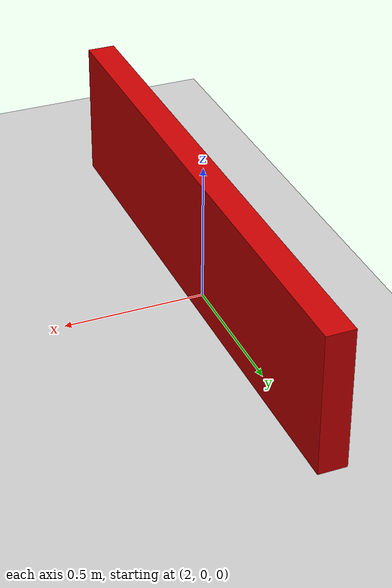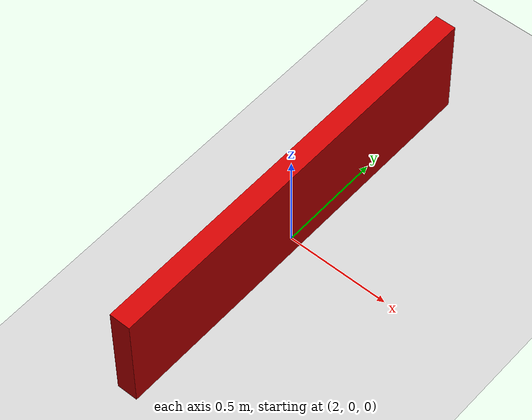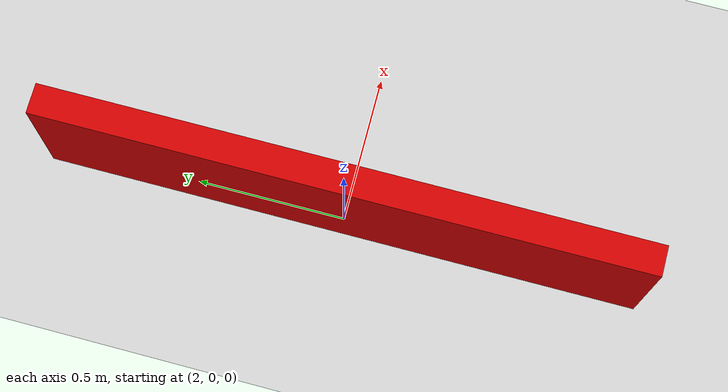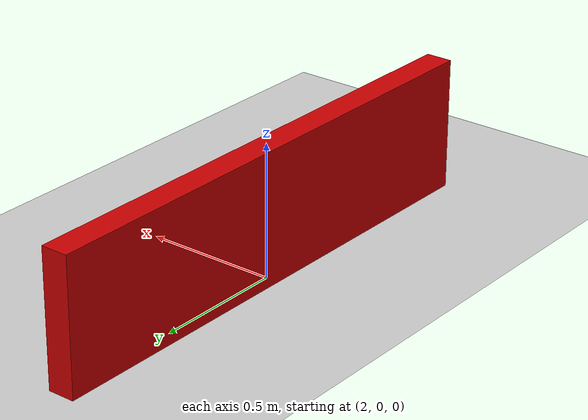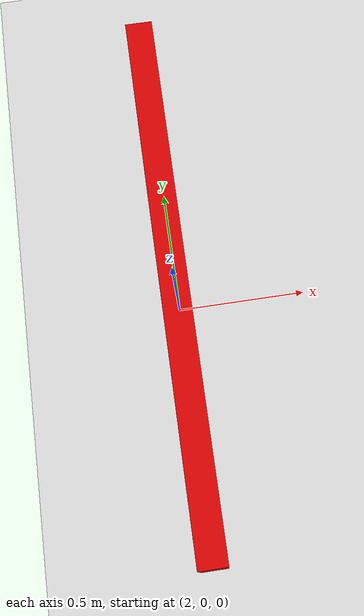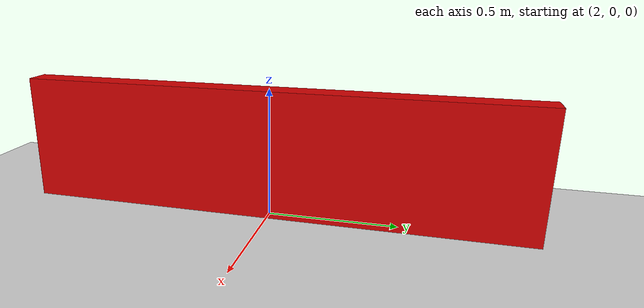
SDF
<?xml version="1.0" ?>
<sdf version="1.8">
  <world name="robot_world">
    <physics name="1ms" type="dart">
      <max_step_size>0.001</max_step_size>
      <real_time_factor>1</real_time_factor>
    </physics>

    <plugin
      filename="gz-sim-physics-system"
      name="gz::sim::systems::Physics">
    </plugin>

    <plugin
      filename="gz-sim-user-commands-system"
      name="gz::sim::systems::UserCommands">
    </plugin>

    <plugin
        filename="gz-sim-sensors-system"
        name="gz::sim::systems::Sensors">
        <render_engine>ogre2</render_engine>
    </plugin>

    <plugin
        filename="gz-sim-joint-state-publisher-system"
        name="gz::sim::systems::JointStatePublisher">
        <update_rate>100</update_rate>
        <joint_name>left_wheel_joint</joint_name>
        <joint_name>right_wheel_joint</joint_name>
        <joint_name>caster_wheel_joint</joint_name>
    </plugin>

    <plugin
        filename="gz-sim-scene-broadcaster-system"
        name="gz::sim::systems::SceneBroadcaster">
    </plugin>

    <light type="directional" name="sun">
      <cast_shadows>true</cast_shadows>
      <pose>0 0 10 0 0 0</pose>
      <diffuse>0.8 0.8 0.8 1</diffuse>
      <specular>0.2 0.2 0.2 1</specular>
      <direction>-0.5 0.1 -0.9</direction>
    </light>

    <model name="ground_plane">
      <static>true</static>
      <link name="link">
        <collision name="collision">
          <geometry>
            <plane>
              <normal>0 0 1</normal>
              <size>100 100</size>
            </plane>
          </geometry>
        </collision>
        <visual name="visual">
          <geometry>
            <plane>
              <normal>0 0 1</normal>
              <size>100 100</size>
            </plane>
          </geometry>
          <material>
            <ambient>0.8 0.8 0.8 1</ambient>
            <diffuse>0.8 0.8 0.8 1</diffuse>
          </material>
        </visual>
      </link>
    </model>

    <model name="wall">
      <static>true</static>
      <pose>2.0 0 0.25 0 0 0</pose>
      <link name="link">
        <collision name="collision">
          <geometry>
            <box>
              <size>0.1 2 0.5</size>
            </box>
          </geometry>
        </collision>
        <visual name="visual">
          <geometry>
            <box>
              <size>0.1 2 0.5</size>
            </box>
          </geometry>
          <material>
            <ambient>0.8 0.0 0.0 1</ambient>
            <diffuse>0.8 0.0 0.0 1</diffuse>
          </material>
        </visual>
      </link>
    </model>

  </world>
</sdf>
